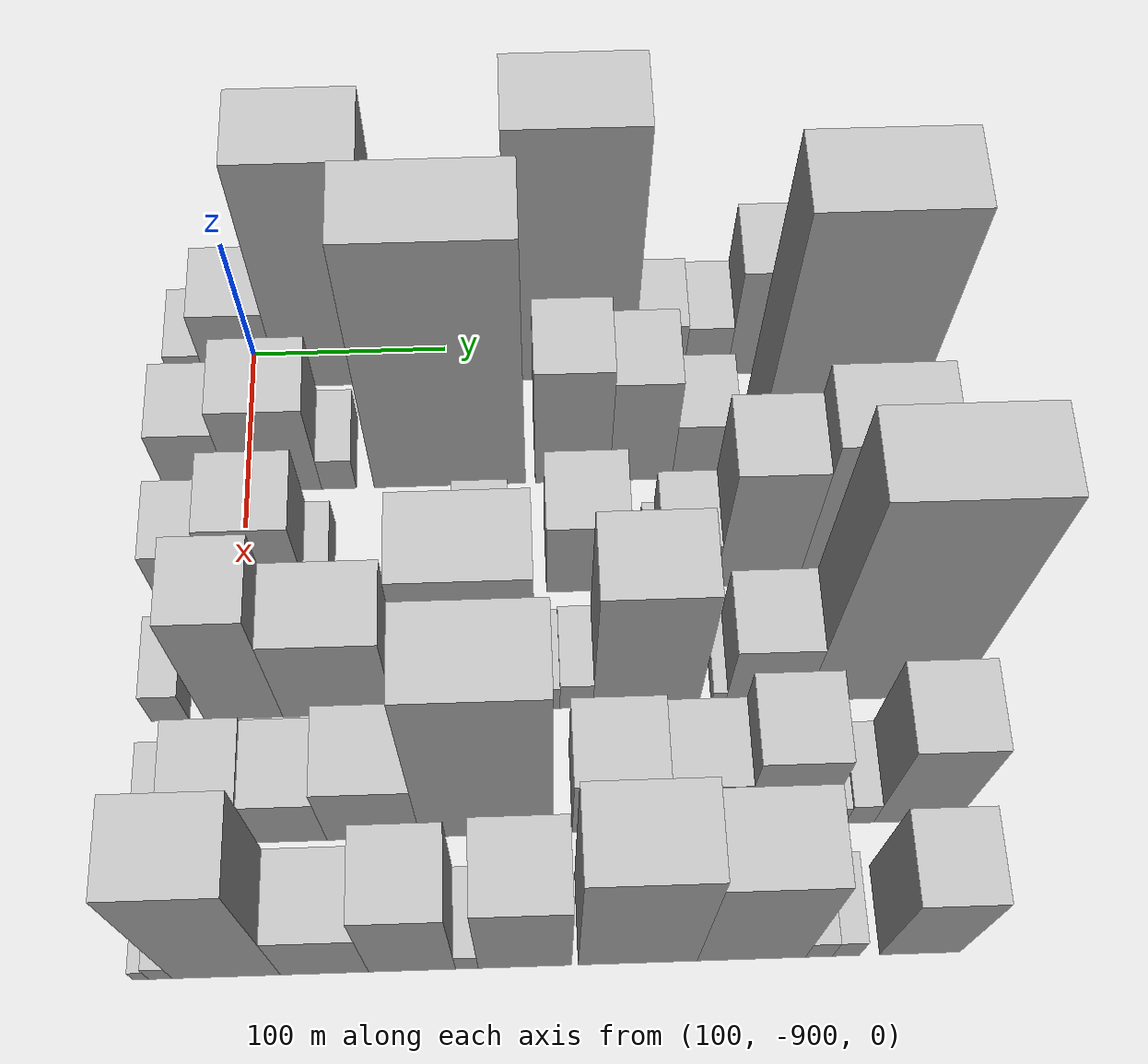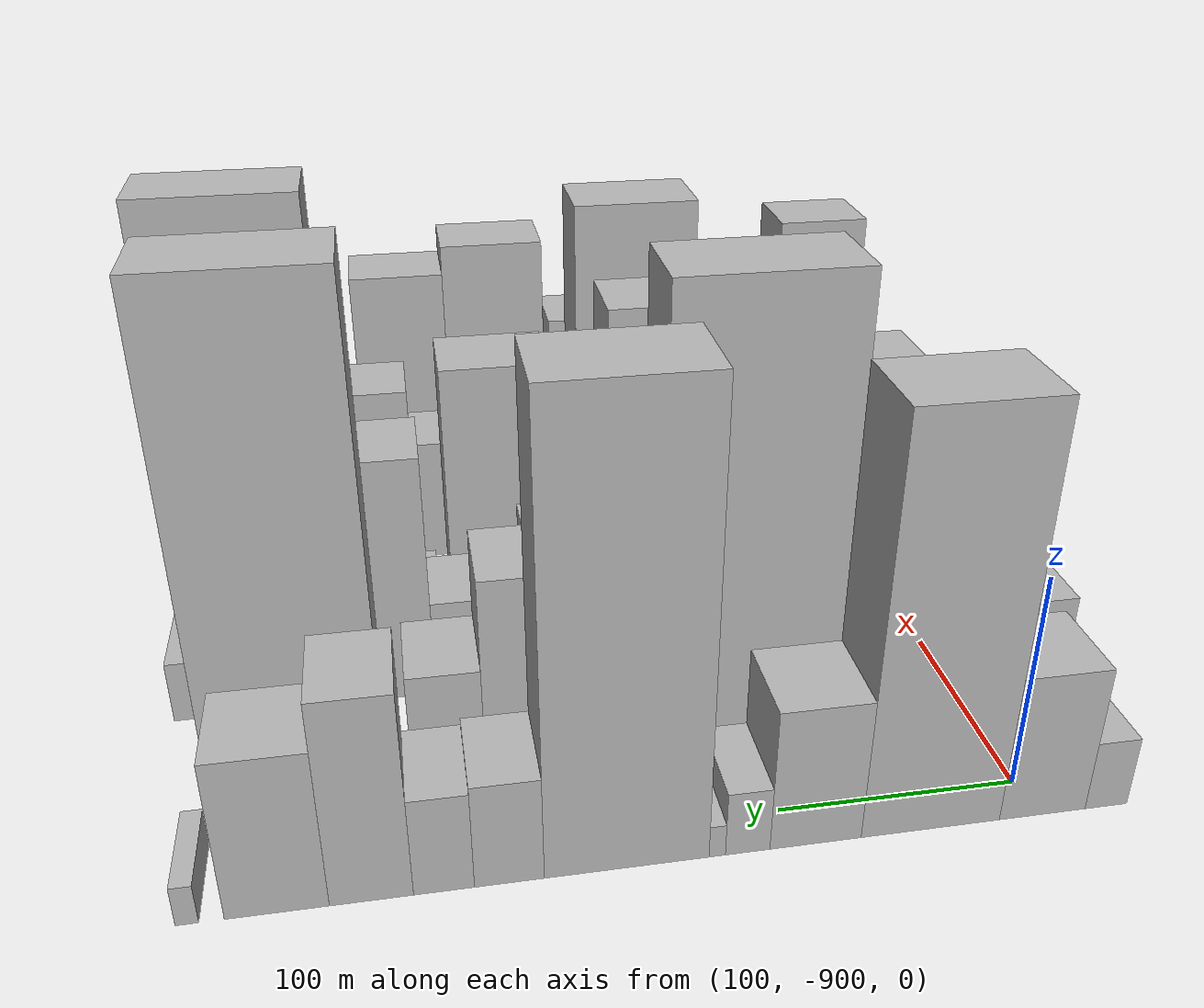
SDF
<sdf version="1.6">
 <world name="default">
  <model name="building_1">
   <static>1</static>
   <pose>100.0000 -930.8884 0 0.000000 0.000000 0.000000</pose>
   <link name="link">
    <pose>0 0 16.50 0 0 0</pose>
    <collision name="collision"><geometry><box><size>40.0000 18.2232 33.0000</size></box></geometry></collision>
    <visual name="visual">
     <cast_shadows>0</cast_shadows>
     <geometry><box><size>40.0000 18.2232 33.0000</size></box></geometry>
     <material>
      <script>
       <uri>model://HANNAS_wall/materials/scripts</uri>
       <uri>model://HANNAS_wall/materials/textures</uri>
       <name>vrc/HANNAS_wall</name>
      </script>
     </material>
    </visual>
   </link>
  </model>
  <model name="building_2">
   <static>1</static>
   <pose>100.0000 -903.4382 0 0.000000 0.000000 0.000000</pose>
   <link name="link">
    <pose>0 0 34.50 0 0 0</pose>
    <collision name="collision"><geometry><box><size>40.0000 36.6772 69.0000</size></box></geometry></collision>
    <visual name="visual">
     <cast_shadows>0</cast_shadows>
     <geometry><box><size>40.0000 36.6772 69.0000</size></box></geometry>
     <material>
      <script>
       <uri>model://HANNAS_wall/materials/scripts</uri>
       <uri>model://HANNAS_wall/materials/textures</uri>
       <name>vrc/HANNAS_wall</name>
      </script>
     </material>
    </visual>
   </link>
  </model>
  <model name="building_3">
   <static>1</static>
   <pose>100.0000 -856.2771 0 0.000000 0.000000 0.000000</pose>
   <link name="link">
    <pose>0 0 93.00 0 0 0</pose>
    <collision name="collision"><geometry><box><size>40.0000 57.6450 186.0000</size></box></geometry></collision>
    <visual name="visual">
     <cast_shadows>0</cast_shadows>
     <geometry><box><size>40.0000 57.6450 186.0000</size></box></geometry>
     <material>
      <script>
       <uri>model://HANNAS_wall/materials/scripts</uri>
       <uri>model://HANNAS_wall/materials/textures</uri>
       <name>vrc/HANNAS_wall</name>
      </script>
     </material>
    </visual>
   </link>
  </model>
  <model name="building_4">
   <static>1</static>
   <pose>100.0000 -808.9553 0 0.000000 0.000000 0.000000</pose>
   <link name="link">
    <pose>0 0 33.00 0 0 0</pose>
    <collision name="collision"><geometry><box><size>40.0000 36.9987 66.0000</size></box></geometry></collision>
    <visual name="visual">
     <cast_shadows>0</cast_shadows>
     <geometry><box><size>40.0000 36.9987 66.0000</size></box></geometry>
     <material>
      <script>
       <uri>model://HANNAS_wall/materials/scripts</uri>
       <uri>model://HANNAS_wall/materials/textures</uri>
       <name>vrc/HANNAS_wall</name>
      </script>
     </material>
    </visual>
   </link>
  </model>
  <model name="building_5">
   <static>1</static>
   <pose>100.0000 -781.5781 0 0.000000 0.000000 0.000000</pose>
   <link name="link">
    <pose>0 0 15.00 0 0 0</pose>
    <collision name="collision"><geometry><box><size>40.0000 17.7556 30.0000</size></box></geometry></collision>
    <visual name="visual">
     <cast_shadows>0</cast_shadows>
     <geometry><box><size>40.0000 17.7556 30.0000</size></box></geometry>
     <material>
      <script>
       <uri>model://HANNAS_wall/materials/scripts</uri>
       <uri>model://HANNAS_wall/materials/textures</uri>
       <name>vrc/HANNAS_wall</name>
      </script>
     </material>
    </visual>
   </link>
  </model>
  <model name="building_6">
   <static>1</static>
   <pose>100.0000 -769.4728 0 0.000000 0.000000 0.000000</pose>
   <link name="link">
    <pose>0 0 7.50 0 0 0</pose>
    <collision name="collision"><geometry><box><size>40.0000 6.4549 15.0000</size></box></geometry></collision>
    <visual name="visual">
     <cast_shadows>0</cast_shadows>
     <geometry><box><size>40.0000 6.4549 15.0000</size></box></geometry>
     <material>
      <script>
       <uri>model://HANNAS_wall/materials/scripts</uri>
       <uri>model://HANNAS_wall/materials/textures</uri>
       <name>vrc/HANNAS_wall</name>
      </script>
     </material>
    </visual>
   </link>
  </model>
  <model name="building_7">
   <static>1</static>
   <pose>100.0000 -734.3356 0 0.000000 0.000000 0.000000</pose>
   <link name="link">
    <pose>0 0 102.00 0 0 0</pose>
    <collision name="collision"><geometry><box><size>40.0000 63.8197 204.0000</size></box></geometry></collision>
    <visual name="visual">
     <cast_shadows>0</cast_shadows>
     <geometry><box><size>40.0000 63.8197 204.0000</size></box></geometry>
     <material>
      <script>
       <uri>model://HANNAS_wall/materials/scripts</uri>
       <uri>model://HANNAS_wall/materials/textures</uri>
       <name>vrc/HANNAS_wall</name>
      </script>
     </material>
    </visual>
   </link>
  </model>
  <model name="building_8">
   <static>1</static>
   <pose>100.0000 -689.2646 0 0.000000 0.000000 0.000000</pose>
   <link name="link">
    <pose>0 0 24.00 0 0 0</pose>
    <collision name="collision"><geometry><box><size>40.0000 26.3223 48.0000</size></box></geometry></collision>
    <visual name="visual">
     <cast_shadows>0</cast_shadows>
     <geometry><box><size>40.0000 26.3223 48.0000</size></box></geometry>
     <material>
      <script>
       <uri>model://HANNAS_wall/materials/scripts</uri>
       <uri>model://HANNAS_wall/materials/textures</uri>
       <name>vrc/HANNAS_wall</name>
      </script>
     </material>
    </visual>
   </link>
  </model>
  <model name="building_9">
   <static>1</static>
   <pose>100.0000 -664.7763 0 0.000000 0.000000 0.000000</pose>
   <link name="link">
    <pose>0 0 22.50 0 0 0</pose>
    <collision name="collision"><geometry><box><size>40.0000 22.6542 45.0000</size></box></geometry></collision>
    <visual name="visual">
     <cast_shadows>0</cast_shadows>
     <geometry><box><size>40.0000 22.6542 45.0000</size></box></geometry>
     <material>
      <script>
       <uri>model://HANNAS_wall/materials/scripts</uri>
       <uri>model://HANNAS_wall/materials/textures</uri>
       <name>vrc/HANNAS_wall</name>
      </script>
     </material>
    </visual>
   </link>
  </model>
  <model name="building_10">
   <static>1</static>
   <pose>100.0000 -638.0792 0 0.000000 0.000000 0.000000</pose>
   <link name="link">
    <pose>0 0 46.50 0 0 0</pose>
    <collision name="collision"><geometry><box><size>40.0000 30.7400 93.0000</size></box></geometry></collision>
    <visual name="visual">
     <cast_shadows>0</cast_shadows>
     <geometry><box><size>40.0000 30.7400 93.0000</size></box></geometry>
     <material>
      <script>
       <uri>model://HANNAS_wall/materials/scripts</uri>
       <uri>model://HANNAS_wall/materials/textures</uri>
       <name>vrc/HANNAS_wall</name>
      </script>
     </material>
    </visual>
   </link>
  </model>
  <model name="building_11">
   <static>1</static>
   <pose>100.0000 -603.9201 0 0.000000 0.000000 0.000000</pose>
   <link name="link">
    <pose>0 0 36.00 0 0 0</pose>
    <collision name="collision"><geometry><box><size>40.0000 37.5782 72.0000</size></box></geometry></collision>
    <visual name="visual">
     <cast_shadows>0</cast_shadows>
     <geometry><box><size>40.0000 37.5782 72.0000</size></box></geometry>
     <material>
      <script>
       <uri>model://HANNAS_wall/materials/scripts</uri>
       <uri>model://HANNAS_wall/materials/textures</uri>
       <name>vrc/HANNAS_wall</name>
      </script>
     </material>
    </visual>
   </link>
  </model>
  <model name="building_12">
   <static>1</static>
   <pose>100.0000 -571.9970 0 0.000000 0.000000 0.000000</pose>
   <link name="link">
    <pose>0 0 9.00 0 0 0</pose>
    <collision name="collision"><geometry><box><size>40.0000 8.2681 18.0000</size></box></geometry></collision>
    <visual name="visual">
     <cast_shadows>0</cast_shadows>
     <geometry><box><size>40.0000 8.2681 18.0000</size></box></geometry>
     <material>
      <script>
       <uri>model://HANNAS_wall/materials/scripts</uri>
       <uri>model://HANNAS_wall/materials/textures</uri>
       <name>vrc/HANNAS_wall</name>
      </script>
     </material>
    </visual>
   </link>
  </model>
  <model name="building_55">
   <static>1</static>
   <pose>160.0000 -923.7888 0 0.000000 0.000000 0.000000</pose>
   <link name="link">
    <pose>0 0 30.00 0 0 0</pose>
    <collision name="collision"><geometry><box><size>40.0000 32.4224 60.0000</size></box></geometry></collision>
    <visual name="visual">
     <cast_shadows>0</cast_shadows>
     <geometry><box><size>40.0000 32.4224 60.0000</size></box></geometry>
     <material>
      <script>
       <uri>model://HANNAS_wall/materials/scripts</uri>
       <uri>model://HANNAS_wall/materials/textures</uri>
       <name>vrc/HANNAS_wall</name>
      </script>
     </material>
    </visual>
   </link>
  </model>
  <model name="building_56">
   <static>1</static>
   <pose>160.0000 -885.0070 0 0.000000 0.000000 0.000000</pose>
   <link name="link">
    <pose>0 0 40.50 0 0 0</pose>
    <collision name="collision"><geometry><box><size>40.0000 45.1412 81.0000</size></box></geometry></collision>
    <visual name="visual">
     <cast_shadows>0</cast_shadows>
     <geometry><box><size>40.0000 45.1412 81.0000</size></box></geometry>
     <material>
      <script>
       <uri>model://HANNAS_wall/materials/scripts</uri>
       <uri>model://HANNAS_wall/materials/textures</uri>
       <name>vrc/HANNAS_wall</name>
      </script>
     </material>
    </visual>
   </link>
  </model>
  <model name="building_57">
   <static>1</static>
   <pose>160.0000 -853.7111 0 0.000000 0.000000 0.000000</pose>
   <link name="link">
    <pose>0 0 15.00 0 0 0</pose>
    <collision name="collision"><geometry><box><size>40.0000 17.4505 30.0000</size></box></geometry></collision>
    <visual name="visual">
     <cast_shadows>0</cast_shadows>
     <geometry><box><size>40.0000 17.4505 30.0000</size></box></geometry>
     <material>
      <script>
       <uri>model://HANNAS_wall/materials/scripts</uri>
       <uri>model://HANNAS_wall/materials/textures</uri>
       <name>vrc/HANNAS_wall</name>
      </script>
     </material>
    </visual>
   </link>
  </model>
  <model name="building_58">
   <static>1</static>
   <pose>160.0000 -797.8970 0 0.000000 0.000000 0.000000</pose>
   <link name="link">
    <pose>0 0 106.50 0 0 0</pose>
    <collision name="collision"><geometry><box><size>40.0000 76.1776 213.0000</size></box></geometry></collision>
    <visual name="visual">
     <cast_shadows>0</cast_shadows>
     <geometry><box><size>40.0000 76.1776 213.0000</size></box></geometry>
     <material>
      <script>
       <uri>model://HANNAS_wall/materials/scripts</uri>
       <uri>model://HANNAS_wall/materials/textures</uri>
       <name>vrc/HANNAS_wall</name>
      </script>
     </material>
    </visual>
   </link>
  </model>
  <model name="building_59">
   <static>1</static>
   <pose>160.0000 -736.1212 0 0.000000 0.000000 0.000000</pose>
   <link name="link">
    <pose>0 0 54.00 0 0 0</pose>
    <collision name="collision"><geometry><box><size>40.0000 37.3741 108.0000</size></box></geometry></collision>
    <visual name="visual">
     <cast_shadows>0</cast_shadows>
     <geometry><box><size>40.0000 37.3741 108.0000</size></box></geometry>
     <material>
      <script>
       <uri>model://HANNAS_wall/materials/scripts</uri>
       <uri>model://HANNAS_wall/materials/textures</uri>
       <name>vrc/HANNAS_wall</name>
      </script>
     </material>
    </visual>
   </link>
  </model>
  <model name="building_60">
   <static>1</static>
   <pose>160.0000 -701.6815 0 0.000000 0.000000 0.000000</pose>
   <link name="link">
    <pose>0 0 48.00 0 0 0</pose>
    <collision name="collision"><geometry><box><size>40.0000 31.5053 96.0000</size></box></geometry></collision>
    <visual name="visual">
     <cast_shadows>0</cast_shadows>
     <geometry><box><size>40.0000 31.5053 96.0000</size></box></geometry>
     <material>
      <script>
       <uri>model://HANNAS_wall/materials/scripts</uri>
       <uri>model://HANNAS_wall/materials/textures</uri>
       <name>vrc/HANNAS_wall</name>
      </script>
     </material>
    </visual>
   </link>
  </model>
  <model name="building_61">
   <static>1</static>
   <pose>160.0000 -670.8694 0 0.000000 0.000000 0.000000</pose>
   <link name="link">
    <pose>0 0 27.00 0 0 0</pose>
    <collision name="collision"><geometry><box><size>40.0000 30.1189 54.0000</size></box></geometry></collision>
    <visual name="visual">
     <cast_shadows>0</cast_shadows>
     <geometry><box><size>40.0000 30.1189 54.0000</size></box></geometry>
     <material>
      <script>
       <uri>model://HANNAS_wall/materials/scripts</uri>
       <uri>model://HANNAS_wall/materials/textures</uri>
       <name>vrc/HANNAS_wall</name>
      </script>
     </material>
    </visual>
   </link>
  </model>
  <model name="building_62">
   <static>1</static>
   <pose>160.0000 -610.5024 0 0.000000 0.000000 0.000000</pose>
   <link name="link">
    <pose>0 0 112.50 0 0 0</pose>
    <collision name="collision"><geometry><box><size>40.0000 70.6151 225.0000</size></box></geometry></collision>
    <visual name="visual">
     <cast_shadows>0</cast_shadows>
     <geometry><box><size>40.0000 70.6151 225.0000</size></box></geometry>
     <material>
      <script>
       <uri>model://HANNAS_wall/materials/scripts</uri>
       <uri>model://HANNAS_wall/materials/textures</uri>
       <name>vrc/HANNAS_wall</name>
      </script>
     </material>
    </visual>
   </link>
  </model>
  <model name="building_102">
   <static>1</static>
   <pose>220.0000 -925.0690 0 0.000000 0.000000 0.000000</pose>
   <link name="link">
    <pose>0 0 27.00 0 0 0</pose>
    <collision name="collision"><geometry><box><size>40.0000 29.8621 54.0000</size></box></geometry></collision>
    <visual name="visual">
     <cast_shadows>0</cast_shadows>
     <geometry><box><size>40.0000 29.8621 54.0000</size></box></geometry>
     <material>
      <script>
       <uri>model://HANNAS_wall/materials/scripts</uri>
       <uri>model://HANNAS_wall/materials/textures</uri>
       <name>vrc/HANNAS_wall</name>
      </script>
     </material>
    </visual>
   </link>
  </model>
  <model name="building_103">
   <static>1</static>
   <pose>220.0000 -888.5050 0 0.000000 0.000000 0.000000</pose>
   <link name="link">
    <pose>0 0 40.50 0 0 0</pose>
    <collision name="collision"><geometry><box><size>40.0000 43.2659 81.0000</size></box></geometry></collision>
    <visual name="visual">
     <cast_shadows>0</cast_shadows>
     <geometry><box><size>40.0000 43.2659 81.0000</size></box></geometry>
     <material>
      <script>
       <uri>model://HANNAS_wall/materials/scripts</uri>
       <uri>model://HANNAS_wall/materials/textures</uri>
       <name>vrc/HANNAS_wall</name>
      </script>
     </material>
    </visual>
   </link>
  </model>
  <model name="building_104">
   <static>1</static>
   <pose>220.0000 -860.9020 0 0.000000 0.000000 0.000000</pose>
   <link name="link">
    <pose>0 0 13.50 0 0 0</pose>
    <collision name="collision"><geometry><box><size>40.0000 11.9401 27.0000</size></box></geometry></collision>
    <visual name="visual">
     <cast_shadows>0</cast_shadows>
     <geometry><box><size>40.0000 11.9401 27.0000</size></box></geometry>
     <material>
      <script>
       <uri>model://HANNAS_wall/materials/scripts</uri>
       <uri>model://HANNAS_wall/materials/textures</uri>
       <name>vrc/HANNAS_wall</name>
      </script>
     </material>
    </visual>
   </link>
  </model>
  <model name="building_105">
   <static>1</static>
   <pose>220.0000 -781.8880 0 0.000000 0.000000 0.000000</pose>
   <link name="link">
    <pose>0 0 22.50 0 0 0</pose>
    <collision name="collision"><geometry><box><size>40.0000 26.6960 45.0000</size></box></geometry></collision>
    <visual name="visual">
     <cast_shadows>0</cast_shadows>
     <geometry><box><size>40.0000 26.6960 45.0000</size></box></geometry>
     <material>
      <script>
       <uri>model://HANNAS_wall/materials/scripts</uri>
       <uri>model://HANNAS_wall/materials/textures</uri>
       <name>vrc/HANNAS_wall</name>
      </script>
     </material>
    </visual>
   </link>
  </model>
  <model name="building_106">
   <static>1</static>
   <pose>220.0000 -764.8139 0 0.000000 0.000000 0.000000</pose>
   <link name="link">
    <pose>0 0 9.00 0 0 0</pose>
    <collision name="collision"><geometry><box><size>40.0000 7.4521 18.0000</size></box></geometry></collision>
    <visual name="visual">
     <cast_shadows>0</cast_shadows>
     <geometry><box><size>40.0000 7.4521 18.0000</size></box></geometry>
     <material>
      <script>
       <uri>model://HANNAS_wall/materials/scripts</uri>
       <uri>model://HANNAS_wall/materials/textures</uri>
       <name>vrc/HANNAS_wall</name>
      </script>
     </material>
    </visual>
   </link>
  </model>
  <model name="building_107">
   <static>1</static>
   <pose>220.0000 -731.5162 0 0.000000 0.000000 0.000000</pose>
   <link name="link">
    <pose>0 0 36.00 0 0 0</pose>
    <collision name="collision"><geometry><box><size>40.0000 39.1433 72.0000</size></box></geometry></collision>
    <visual name="visual">
     <cast_shadows>0</cast_shadows>
     <geometry><box><size>40.0000 39.1433 72.0000</size></box></geometry>
     <material>
      <script>
       <uri>model://HANNAS_wall/materials/scripts</uri>
       <uri>model://HANNAS_wall/materials/textures</uri>
       <name>vrc/HANNAS_wall</name>
      </script>
     </material>
    </visual>
   </link>
  </model>
  <model name="building_108">
   <static>1</static>
   <pose>220.0000 -699.8609 0 0.000000 0.000000 0.000000</pose>
   <link name="link">
    <pose>0 0 7.50 0 0 0</pose>
    <collision name="collision"><geometry><box><size>40.0000 6.1673 15.0000</size></box></geometry></collision>
    <visual name="visual">
     <cast_shadows>0</cast_shadows>
     <geometry><box><size>40.0000 6.1673 15.0000</size></box></geometry>
     <material>
      <script>
       <uri>model://HANNAS_wall/materials/scripts</uri>
       <uri>model://HANNAS_wall/materials/textures</uri>
       <name>vrc/HANNAS_wall</name>
      </script>
     </material>
    </visual>
   </link>
  </model>
  <model name="building_109">
   <static>1</static>
   <pose>220.0000 -682.7426 0 0.000000 0.000000 0.000000</pose>
   <link name="link">
    <pose>0 0 24.00 0 0 0</pose>
    <collision name="collision"><geometry><box><size>40.0000 28.0693 48.0000</size></box></geometry></collision>
    <visual name="visual">
     <cast_shadows>0</cast_shadows>
     <geometry><box><size>40.0000 28.0693 48.0000</size></box></geometry>
     <material>
      <script>
       <uri>model://HANNAS_wall/materials/scripts</uri>
       <uri>model://HANNAS_wall/materials/textures</uri>
       <name>vrc/HANNAS_wall</name>
      </script>
     </material>
    </visual>
   </link>
  </model>
  <model name="building_110">
   <static>1</static>
   <pose>220.0000 -648.5924 0 0.000000 0.000000 0.000000</pose>
   <link name="link">
    <pose>0 0 60.00 0 0 0</pose>
    <collision name="collision"><geometry><box><size>40.0000 40.2312 120.0000</size></box></geometry></collision>
    <visual name="visual">
     <cast_shadows>0</cast_shadows>
     <geometry><box><size>40.0000 40.2312 120.0000</size></box></geometry>
     <material>
      <script>
       <uri>model://HANNAS_wall/materials/scripts</uri>
       <uri>model://HANNAS_wall/materials/textures</uri>
       <name>vrc/HANNAS_wall</name>
      </script>
     </material>
    </visual>
   </link>
  </model>
  <model name="building_111">
   <static>1</static>
   <pose>220.0000 -602.0345 0 0.000000 0.000000 0.000000</pose>
   <link name="link">
    <pose>0 0 72.00 0 0 0</pose>
    <collision name="collision"><geometry><box><size>40.0000 52.8846 144.0000</size></box></geometry></collision>
    <visual name="visual">
     <cast_shadows>0</cast_shadows>
     <geometry><box><size>40.0000 52.8846 144.0000</size></box></geometry>
     <material>
      <script>
       <uri>model://HANNAS_wall/materials/scripts</uri>
       <uri>model://HANNAS_wall/materials/textures</uri>
       <name>vrc/HANNAS_wall</name>
      </script>
     </material>
    </visual>
   </link>
  </model>
  <model name="building_112">
   <static>1</static>
   <pose>220.0000 -562.2152 0 0.000000 0.000000 0.000000</pose>
   <link name="link">
    <pose>0 0 15.00 0 0 0</pose>
    <collision name="collision"><geometry><box><size>40.0000 16.7540 30.0000</size></box></geometry></collision>
    <visual name="visual">
     <cast_shadows>0</cast_shadows>
     <geometry><box><size>40.0000 16.7540 30.0000</size></box></geometry>
     <material>
      <script>
       <uri>model://HANNAS_wall/materials/scripts</uri>
       <uri>model://HANNAS_wall/materials/textures</uri>
       <name>vrc/HANNAS_wall</name>
      </script>
     </material>
    </visual>
   </link>
  </model>
  <model name="building_155">
   <static>1</static>
   <pose>280.0000 -930.9898 0 0.000000 0.000000 0.000000</pose>
   <link name="link">
    <pose>0 0 16.50 0 0 0</pose>
    <collision name="collision"><geometry><box><size>40.0000 18.0205 33.0000</size></box></geometry></collision>
    <visual name="visual">
     <cast_shadows>0</cast_shadows>
     <geometry><box><size>40.0000 18.0205 33.0000</size></box></geometry>
     <material>
      <script>
       <uri>model://HANNAS_wall/materials/scripts</uri>
       <uri>model://HANNAS_wall/materials/textures</uri>
       <name>vrc/HANNAS_wall</name>
      </script>
     </material>
    </visual>
   </link>
  </model>
  <model name="building_156">
   <static>1</static>
   <pose>280.0000 -896.4226 0 0.000000 0.000000 0.000000</pose>
   <link name="link">
    <pose>0 0 60.00 0 0 0</pose>
    <collision name="collision"><geometry><box><size>40.0000 37.1139 120.0000</size></box></geometry></collision>
    <visual name="visual">
     <cast_shadows>0</cast_shadows>
     <geometry><box><size>40.0000 37.1139 120.0000</size></box></geometry>
     <material>
      <script>
       <uri>model://HANNAS_wall/materials/scripts</uri>
       <uri>model://HANNAS_wall/materials/textures</uri>
       <name>vrc/HANNAS_wall</name>
      </script>
     </material>
    </visual>
   </link>
  </model>
  <model name="building_157">
   <static>1</static>
   <pose>280.0000 -851.5133 0 0.000000 0.000000 0.000000</pose>
   <link name="link">
    <pose>0 0 45.00 0 0 0</pose>
    <collision name="collision"><geometry><box><size>40.0000 52.7048 90.0000</size></box></geometry></collision>
    <visual name="visual">
     <cast_shadows>0</cast_shadows>
     <geometry><box><size>40.0000 52.7048 90.0000</size></box></geometry>
     <material>
      <script>
       <uri>model://HANNAS_wall/materials/scripts</uri>
       <uri>model://HANNAS_wall/materials/textures</uri>
       <name>vrc/HANNAS_wall</name>
      </script>
     </material>
    </visual>
   </link>
  </model>
  <model name="building_158">
   <static>1</static>
   <pose>280.0000 -787.6156 0 0.000000 0.000000 0.000000</pose>
   <link name="link">
    <pose>0 0 78.00 0 0 0</pose>
    <collision name="collision"><geometry><box><size>40.0000 59.0904 156.0000</size></box></geometry></collision>
    <visual name="visual">
     <cast_shadows>0</cast_shadows>
     <geometry><box><size>40.0000 59.0904 156.0000</size></box></geometry>
     <material>
      <script>
       <uri>model://HANNAS_wall/materials/scripts</uri>
       <uri>model://HANNAS_wall/materials/textures</uri>
       <name>vrc/HANNAS_wall</name>
      </script>
     </material>
    </visual>
   </link>
  </model>
  <model name="building_159">
   <static>1</static>
   <pose>280.0000 -752.4016 0 0.000000 0.000000 0.000000</pose>
   <link name="link">
    <pose>0 0 13.50 0 0 0</pose>
    <collision name="collision"><geometry><box><size>40.0000 11.3377 27.0000</size></box></geometry></collision>
    <visual name="visual">
     <cast_shadows>0</cast_shadows>
     <geometry><box><size>40.0000 11.3377 27.0000</size></box></geometry>
     <material>
      <script>
       <uri>model://HANNAS_wall/materials/scripts</uri>
       <uri>model://HANNAS_wall/materials/textures</uri>
       <name>vrc/HANNAS_wall</name>
      </script>
     </material>
    </visual>
   </link>
  </model>
  <model name="building_160">
   <static>1</static>
   <pose>280.0000 -738.8830 0 0.000000 0.000000 0.000000</pose>
   <link name="link">
    <pose>0 0 15.00 0 0 0</pose>
    <collision name="collision"><geometry><box><size>40.0000 15.6993 30.0000</size></box></geometry></collision>
    <visual name="visual">
     <cast_shadows>0</cast_shadows>
     <geometry><box><size>40.0000 15.6993 30.0000</size></box></geometry>
     <material>
      <script>
       <uri>model://HANNAS_wall/materials/scripts</uri>
       <uri>model://HANNAS_wall/materials/textures</uri>
       <name>vrc/HANNAS_wall</name>
      </script>
     </material>
    </visual>
   </link>
  </model>
  <model name="building_161">
   <static>1</static>
   <pose>280.0000 -705.9046 0 0.000000 0.000000 0.000000</pose>
   <link name="link">
    <pose>0 0 66.00 0 0 0</pose>
    <collision name="collision"><geometry><box><size>40.0000 50.2576 132.0000</size></box></geometry></collision>
    <visual name="visual">
     <cast_shadows>0</cast_shadows>
     <geometry><box><size>40.0000 50.2576 132.0000</size></box></geometry>
     <material>
      <script>
       <uri>model://HANNAS_wall/materials/scripts</uri>
       <uri>model://HANNAS_wall/materials/textures</uri>
       <name>vrc/HANNAS_wall</name>
      </script>
     </material>
    </visual>
   </link>
  </model>
  <model name="building_162">
   <static>1</static>
   <pose>280.0000 -671.5003 0 0.000000 0.000000 0.000000</pose>
   <link name="link">
    <pose>0 0 7.50 0 0 0</pose>
    <collision name="collision"><geometry><box><size>40.0000 6.5511 15.0000</size></box></geometry></collision>
    <visual name="visual">
     <cast_shadows>0</cast_shadows>
     <geometry><box><size>40.0000 6.5511 15.0000</size></box></geometry>
     <material>
      <script>
       <uri>model://HANNAS_wall/materials/scripts</uri>
       <uri>model://HANNAS_wall/materials/textures</uri>
       <name>vrc/HANNAS_wall</name>
      </script>
     </material>
    </visual>
   </link>
  </model>
  <model name="building_163">
   <static>1</static>
   <pose>280.0000 -648.7282 0 0.000000 0.000000 0.000000</pose>
   <link name="link">
    <pose>0 0 33.00 0 0 0</pose>
    <collision name="collision"><geometry><box><size>40.0000 38.9931 66.0000</size></box></geometry></collision>
    <visual name="visual">
     <cast_shadows>0</cast_shadows>
     <geometry><box><size>40.0000 38.9931 66.0000</size></box></geometry>
     <material>
      <script>
       <uri>model://HANNAS_wall/materials/scripts</uri>
       <uri>model://HANNAS_wall/materials/textures</uri>
       <name>vrc/HANNAS_wall</name>
      </script>
     </material>
    </visual>
   </link>
  </model>
  <model name="building_164">
   <static>1</static>
   <pose>280.0000 -593.3296 0 0.000000 0.000000 0.000000</pose>
   <link name="link">
    <pose>0 0 108.00 0 0 0</pose>
    <collision name="collision"><geometry><box><size>40.0000 71.8040 216.0000</size></box></geometry></collision>
    <visual name="visual">
     <cast_shadows>0</cast_shadows>
     <geometry><box><size>40.0000 71.8040 216.0000</size></box></geometry>
     <material>
      <script>
       <uri>model://HANNAS_wall/materials/scripts</uri>
       <uri>model://HANNAS_wall/materials/textures</uri>
       <name>vrc/HANNAS_wall</name>
      </script>
     </material>
    </visual>
   </link>
  </model>
  <model name="building_210">
   <static>1</static>
   <pose>340.0000 -931.3891 0 0.000000 0.000000 0.000000</pose>
   <link name="link">
    <pose>0 0 15.00 0 0 0</pose>
    <collision name="collision"><geometry><box><size>40.0000 17.2219 30.0000</size></box></geometry></collision>
    <visual name="visual">
     <cast_shadows>0</cast_shadows>
     <geometry><box><size>40.0000 17.2219 30.0000</size></box></geometry>
     <material>
      <script>
       <uri>model://HANNAS_wall/materials/scripts</uri>
       <uri>model://HANNAS_wall/materials/textures</uri>
       <name>vrc/HANNAS_wall</name>
      </script>
     </material>
    </visual>
   </link>
  </model>
  <model name="building_211">
   <static>1</static>
   <pose>340.0000 -905.6342 0 0.000000 0.000000 0.000000</pose>
   <link name="link">
    <pose>0 0 30.00 0 0 0</pose>
    <collision name="collision"><geometry><box><size>40.0000 34.2880 60.0000</size></box></geometry></collision>
    <visual name="visual">
     <cast_shadows>0</cast_shadows>
     <geometry><box><size>40.0000 34.2880 60.0000</size></box></geometry>
     <material>
      <script>
       <uri>model://HANNAS_wall/materials/scripts</uri>
       <uri>model://HANNAS_wall/materials/textures</uri>
       <name>vrc/HANNAS_wall</name>
      </script>
     </material>
    </visual>
   </link>
  </model>
  <model name="building_212">
   <static>1</static>
   <pose>340.0000 -872.0698 0 0.000000 0.000000 0.000000</pose>
   <link name="link">
    <pose>0 0 28.50 0 0 0</pose>
    <collision name="collision"><geometry><box><size>40.0000 32.8408 57.0000</size></box></geometry></collision>
    <visual name="visual">
     <cast_shadows>0</cast_shadows>
     <geometry><box><size>40.0000 32.8408 57.0000</size></box></geometry>
     <material>
      <script>
       <uri>model://HANNAS_wall/materials/scripts</uri>
       <uri>model://HANNAS_wall/materials/textures</uri>
       <name>vrc/HANNAS_wall</name>
      </script>
     </material>
    </visual>
   </link>
  </model>
  <model name="building_213">
   <static>1</static>
   <pose>340.0000 -834.2692 0 0.000000 0.000000 0.000000</pose>
   <link name="link">
    <pose>0 0 36.00 0 0 0</pose>
    <collision name="collision"><geometry><box><size>40.0000 42.7603 72.0000</size></box></geometry></collision>
    <visual name="visual">
     <cast_shadows>0</cast_shadows>
     <geometry><box><size>40.0000 42.7603 72.0000</size></box></geometry>
     <material>
      <script>
       <uri>model://HANNAS_wall/materials/scripts</uri>
       <uri>model://HANNAS_wall/materials/textures</uri>
       <name>vrc/HANNAS_wall</name>
      </script>
     </material>
    </visual>
   </link>
  </model>
  <model name="building_214">
   <static>1</static>
   <pose>340.0000 -782.5350 0 0.000000 0.000000 0.000000</pose>
   <link name="link">
    <pose>0 0 93.00 0 0 0</pose>
    <collision name="collision"><geometry><box><size>40.0000 60.7081 186.0000</size></box></geometry></collision>
    <visual name="visual">
     <cast_shadows>0</cast_shadows>
     <geometry><box><size>40.0000 60.7081 186.0000</size></box></geometry>
     <material>
      <script>
       <uri>model://HANNAS_wall/materials/scripts</uri>
       <uri>model://HANNAS_wall/materials/textures</uri>
       <name>vrc/HANNAS_wall</name>
      </script>
     </material>
    </visual>
   </link>
  </model>
  <model name="building_215">
   <static>1</static>
   <pose>340.0000 -722.3495 0 0.000000 0.000000 0.000000</pose>
   <link name="link">
    <pose>0 0 36.00 0 0 0</pose>
    <collision name="collision"><geometry><box><size>40.0000 41.6630 72.0000</size></box></geometry></collision>
    <visual name="visual">
     <cast_shadows>0</cast_shadows>
     <geometry><box><size>40.0000 41.6630 72.0000</size></box></geometry>
     <material>
      <script>
       <uri>model://HANNAS_wall/materials/scripts</uri>
       <uri>model://HANNAS_wall/materials/textures</uri>
       <name>vrc/HANNAS_wall</name>
      </script>
     </material>
    </visual>
   </link>
  </model>
  <model name="building_216">
   <static>1</static>
   <pose>340.0000 -683.8826 0 0.000000 0.000000 0.000000</pose>
   <link name="link">
    <pose>0 0 33.00 0 0 0</pose>
    <collision name="collision"><geometry><box><size>40.0000 35.2708 66.0000</size></box></geometry></collision>
    <visual name="visual">
     <cast_shadows>0</cast_shadows>
     <geometry><box><size>40.0000 35.2708 66.0000</size></box></geometry>
     <material>
      <script>
       <uri>model://HANNAS_wall/materials/scripts</uri>
       <uri>model://HANNAS_wall/materials/textures</uri>
       <name>vrc/HANNAS_wall</name>
      </script>
     </material>
    </visual>
   </link>
  </model>
  <model name="building_217">
   <static>1</static>
   <pose>340.0000 -647.1881 0 0.000000 0.000000 0.000000</pose>
   <link name="link">
    <pose>0 0 48.00 0 0 0</pose>
    <collision name="collision"><geometry><box><size>40.0000 38.1180 96.0000</size></box></geometry></collision>
    <visual name="visual">
     <cast_shadows>0</cast_shadows>
     <geometry><box><size>40.0000 38.1180 96.0000</size></box></geometry>
     <material>
      <script>
       <uri>model://HANNAS_wall/materials/scripts</uri>
       <uri>model://HANNAS_wall/materials/textures</uri>
       <name>vrc/HANNAS_wall</name>
      </script>
     </material>
    </visual>
   </link>
  </model>
  <model name="building_218">
   <static>1</static>
   <pose>340.0000 -622.6816 0 0.000000 0.000000 0.000000</pose>
   <link name="link">
    <pose>0 0 12.00 0 0 0</pose>
    <collision name="collision"><geometry><box><size>40.0000 10.8951 24.0000</size></box></geometry></collision>
    <visual name="visual">
     <cast_shadows>0</cast_shadows>
     <geometry><box><size>40.0000 10.8951 24.0000</size></box></geometry>
     <material>
      <script>
       <uri>model://HANNAS_wall/materials/scripts</uri>
       <uri>model://HANNAS_wall/materials/textures</uri>
       <name>vrc/HANNAS_wall</name>
      </script>
     </material>
    </visual>
   </link>
  </model>
  <model name="building_219">
   <static>1</static>
   <pose>340.0000 -610.7625 0 0.000000 0.000000 0.000000</pose>
   <link name="link">
    <pose>0 0 13.50 0 0 0</pose>
    <collision name="collision"><geometry><box><size>40.0000 12.9431 27.0000</size></box></geometry></collision>
    <visual name="visual">
     <cast_shadows>0</cast_shadows>
     <geometry><box><size>40.0000 12.9431 27.0000</size></box></geometry>
     <material>
      <script>
       <uri>model://HANNAS_wall/materials/scripts</uri>
       <uri>model://HANNAS_wall/materials/textures</uri>
       <name>vrc/HANNAS_wall</name>
      </script>
     </material>
    </visual>
   </link>
  </model>
  <model name="building_220">
   <static>1</static>
   <pose>340.0000 -585.0304 0 0.000000 0.000000 0.000000</pose>
   <link name="link">
    <pose>0 0 52.50 0 0 0</pose>
    <collision name="collision"><geometry><box><size>40.0000 38.5209 105.0000</size></box></geometry></collision>
    <visual name="visual">
     <cast_shadows>0</cast_shadows>
     <geometry><box><size>40.0000 38.5209 105.0000</size></box></geometry>
     <material>
      <script>
       <uri>model://HANNAS_wall/materials/scripts</uri>
       <uri>model://HANNAS_wall/materials/textures</uri>
       <name>vrc/HANNAS_wall</name>
      </script>
     </material>
    </visual>
   </link>
  </model>
  <model name="building_262">
   <static>1</static>
   <pose>400.0000 -936.5611 0 0.000000 0.000000 0.000000</pose>
   <link name="link">
    <pose>0 0 7.50 0 0 0</pose>
    <collision name="collision"><geometry><box><size>40.0000 6.8778 15.0000</size></box></geometry></collision>
    <visual name="visual">
     <cast_shadows>0</cast_shadows>
     <geometry><box><size>40.0000 6.8778 15.0000</size></box></geometry>
     <material>
      <script>
       <uri>model://HANNAS_wall/materials/scripts</uri>
       <uri>model://HANNAS_wall/materials/textures</uri>
       <name>vrc/HANNAS_wall</name>
      </script>
     </material>
    </visual>
   </link>
  </model>
  <model name="building_263">
   <static>1</static>
   <pose>400.0000 -927.9622 0 0.000000 0.000000 0.000000</pose>
   <link name="link">
    <pose>0 0 10.50 0 0 0</pose>
    <collision name="collision"><geometry><box><size>40.0000 10.3200 21.0000</size></box></geometry></collision>
    <visual name="visual">
     <cast_shadows>0</cast_shadows>
     <geometry><box><size>40.0000 10.3200 21.0000</size></box></geometry>
     <material>
      <script>
       <uri>model://HANNAS_wall/materials/scripts</uri>
       <uri>model://HANNAS_wall/materials/textures</uri>
       <name>vrc/HANNAS_wall</name>
      </script>
     </material>
    </visual>
   </link>
  </model>
  <model name="building_264">
   <static>1</static>
   <pose>400.0000 -898.8757 0 0.000000 0.000000 0.000000</pose>
   <link name="link">
    <pose>0 0 76.50 0 0 0</pose>
    <collision name="collision"><geometry><box><size>40.0000 47.8530 153.0000</size></box></geometry></collision>
    <visual name="visual">
     <cast_shadows>0</cast_shadows>
     <geometry><box><size>40.0000 47.8530 153.0000</size></box></geometry>
     <material>
      <script>
       <uri>model://HANNAS_wall/materials/scripts</uri>
       <uri>model://HANNAS_wall/materials/textures</uri>
       <name>vrc/HANNAS_wall</name>
      </script>
     </material>
    </visual>
   </link>
  </model>
  <model name="building_265">
   <static>1</static>
   <pose>400.0000 -855.4414 0 0.000000 0.000000 0.000000</pose>
   <link name="link">
    <pose>0 0 33.00 0 0 0</pose>
    <collision name="collision"><geometry><box><size>40.0000 39.0155 66.0000</size></box></geometry></collision>
    <visual name="visual">
     <cast_shadows>0</cast_shadows>
     <geometry><box><size>40.0000 39.0155 66.0000</size></box></geometry>
     <material>
      <script>
       <uri>model://HANNAS_wall/materials/scripts</uri>
       <uri>model://HANNAS_wall/materials/textures</uri>
       <name>vrc/HANNAS_wall</name>
      </script>
     </material>
    </visual>
   </link>
  </model>
  <model name="building_266">
   <static>1</static>
   <pose>400.0000 -816.6596 0 0.000000 0.000000 0.000000</pose>
   <link name="link">
    <pose>0 0 49.50 0 0 0</pose>
    <collision name="collision"><geometry><box><size>40.0000 38.5482 99.0000</size></box></geometry></collision>
    <visual name="visual">
     <cast_shadows>0</cast_shadows>
     <geometry><box><size>40.0000 38.5482 99.0000</size></box></geometry>
     <material>
      <script>
       <uri>model://HANNAS_wall/materials/scripts</uri>
       <uri>model://HANNAS_wall/materials/textures</uri>
       <name>vrc/HANNAS_wall</name>
      </script>
     </material>
    </visual>
   </link>
  </model>
  <model name="building_267">
   <static>1</static>
   <pose>400.0000 -792.3602 0 0.000000 0.000000 0.000000</pose>
   <link name="link">
    <pose>0 0 12.00 0 0 0</pose>
    <collision name="collision"><geometry><box><size>40.0000 10.0506 24.0000</size></box></geometry></collision>
    <visual name="visual">
     <cast_shadows>0</cast_shadows>
     <geometry><box><size>40.0000 10.0506 24.0000</size></box></geometry>
     <material>
      <script>
       <uri>model://HANNAS_wall/materials/scripts</uri>
       <uri>model://HANNAS_wall/materials/textures</uri>
       <name>vrc/HANNAS_wall</name>
      </script>
     </material>
    </visual>
   </link>
  </model>
  <model name="building_268">
   <static>1</static>
   <pose>400.0000 -766.6109 0 0.000000 0.000000 0.000000</pose>
   <link name="link">
    <pose>0 0 52.50 0 0 0</pose>
    <collision name="collision"><geometry><box><size>40.0000 41.4480 105.0000</size></box></geometry></collision>
    <visual name="visual">
     <cast_shadows>0</cast_shadows>
     <geometry><box><size>40.0000 41.4480 105.0000</size></box></geometry>
     <material>
      <script>
       <uri>model://HANNAS_wall/materials/scripts</uri>
       <uri>model://HANNAS_wall/materials/textures</uri>
       <name>vrc/HANNAS_wall</name>
      </script>
     </material>
    </visual>
   </link>
  </model>
  <model name="building_269">
   <static>1</static>
   <pose>400.0000 -716.3826 0 0.000000 0.000000 0.000000</pose>
   <link name="link">
    <pose>0 0 75.00 0 0 0</pose>
    <collision name="collision"><geometry><box><size>40.0000 53.0086 150.0000</size></box></geometry></collision>
    <visual name="visual">
     <cast_shadows>0</cast_shadows>
     <geometry><box><size>40.0000 53.0086 150.0000</size></box></geometry>
     <material>
      <script>
       <uri>model://HANNAS_wall/materials/scripts</uri>
       <uri>model://HANNAS_wall/materials/textures</uri>
       <name>vrc/HANNAS_wall</name>
      </script>
     </material>
    </visual>
   </link>
  </model>
  <model name="building_270">
   <static>1</static>
   <pose>400.0000 -665.6886 0 0.000000 0.000000 0.000000</pose>
   <link name="link">
    <pose>0 0 67.50 0 0 0</pose>
    <collision name="collision"><geometry><box><size>40.0000 48.3795 135.0000</size></box></geometry></collision>
    <visual name="visual">
     <cast_shadows>0</cast_shadows>
     <geometry><box><size>40.0000 48.3795 135.0000</size></box></geometry>
     <material>
      <script>
       <uri>model://HANNAS_wall/materials/scripts</uri>
       <uri>model://HANNAS_wall/materials/textures</uri>
       <name>vrc/HANNAS_wall</name>
      </script>
     </material>
    </visual>
   </link>
  </model>
  <model name="building_271">
   <static>1</static>
   <pose>400.0000 -635.4987 0 0.000000 0.000000 0.000000</pose>
   <link name="link">
    <pose>0 0 13.50 0 0 0</pose>
    <collision name="collision"><geometry><box><size>40.0000 12.0002 27.0000</size></box></geometry></collision>
    <visual name="visual">
     <cast_shadows>0</cast_shadows>
     <geometry><box><size>40.0000 12.0002 27.0000</size></box></geometry>
     <material>
      <script>
       <uri>model://HANNAS_wall/materials/scripts</uri>
       <uri>model://HANNAS_wall/materials/textures</uri>
       <name>vrc/HANNAS_wall</name>
      </script>
     </material>
    </visual>
   </link>
  </model>
  <model name="building_272">
   <static>1</static>
   <pose>400.0000 -623.4657 0 0.000000 0.000000 0.000000</pose>
   <link name="link">
    <pose>0 0 13.50 0 0 0</pose>
    <collision name="collision"><geometry><box><size>40.0000 12.0658 27.0000</size></box></geometry></collision>
    <visual name="visual">
     <cast_shadows>0</cast_shadows>
     <geometry><box><size>40.0000 12.0658 27.0000</size></box></geometry>
     <material>
      <script>
       <uri>model://HANNAS_wall/materials/scripts</uri>
       <uri>model://HANNAS_wall/materials/textures</uri>
       <name>vrc/HANNAS_wall</name>
      </script>
     </material>
    </visual>
   </link>
  </model>
  <model name="building_273">
   <static>1</static>
   <pose>400.0000 -590.4365 0 0.000000 0.000000 0.000000</pose>
   <link name="link">
    <pose>0 0 48.00 0 0 0</pose>
    <collision name="collision"><geometry><box><size>40.0000 35.9926 96.0000</size></box></geometry></collision>
    <visual name="visual">
     <cast_shadows>0</cast_shadows>
     <geometry><box><size>40.0000 35.9926 96.0000</size></box></geometry>
     <material>
      <script>
       <uri>model://HANNAS_wall/materials/scripts</uri>
       <uri>model://HANNAS_wall/materials/textures</uri>
       <name>vrc/HANNAS_wall</name>
      </script>
     </material>
    </visual>
   </link>
  </model>
 </world>
</sdf>
